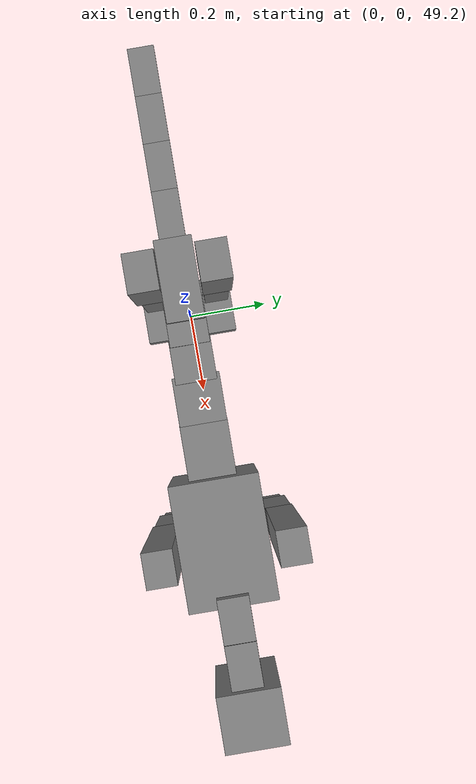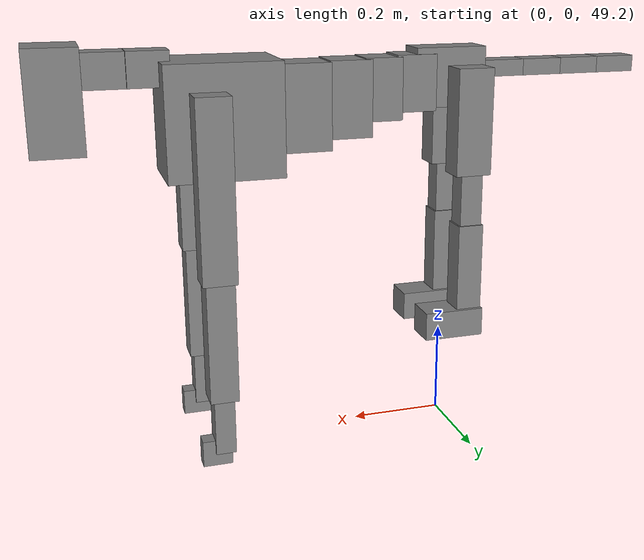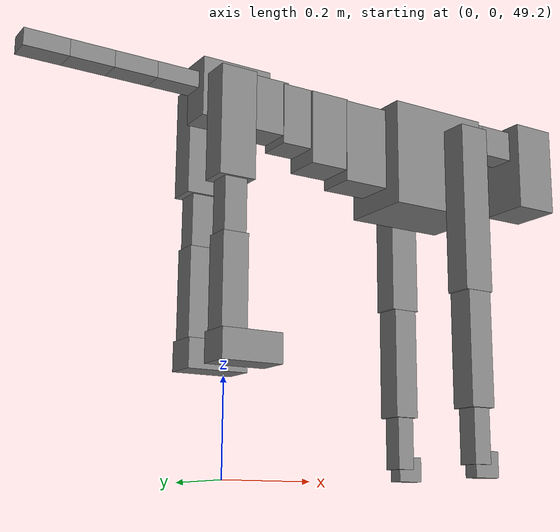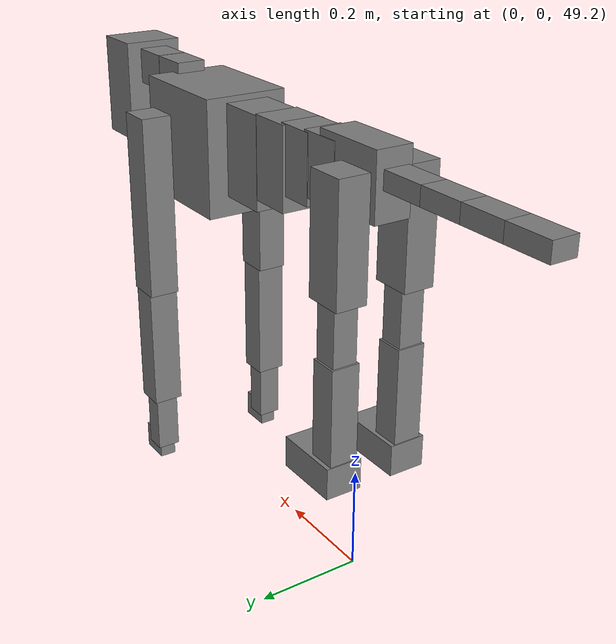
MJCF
<mujoco model="dog">

    <default>
        <joint armature="0.02" stiffness="1" damping="0.2" limited="true"/>
        <geom condim="3" friction="1 0.05 0.05" margin="0.01"/>
        <motor ctrllimited="true" ctrlrange="-1.0 1.0" forcelimited="true" gear="50"/>
    </default>

    <compiler inertiafromgeom="true" angle="radian"/>

    <option timestep="0.016" iterations="50" tolerance="1e-10" solver="Newton" jacobian="dense" cone="pyramidal"/>

    <size nconmax="20000" njmax="60000" nstack="5000000"/>
    <visual>
        <map force="0.1" zfar="30"/>
        <rgba haze="0.15 0.25 0.35 1"/>
        <quality shadowsize="2048"/>
        <global offwidth="800" offheight="800"/>
    </visual>

    <asset>
        <texture type="skybox" builtin="gradient" rgb1="0.3 0.5 0.7" rgb2="0 0 0" width="512" height="512"/>
        <texture name="texplane" type="2d" builtin="checker" rgb1=".2 .3 .4" rgb2=".1 0.15 0.2" width="512" height="512"
                 mark="cross" markrgb=".8 .8 .8"/>
        <texture name="texgeom" type="cube" builtin="flat" mark="cross" width="127" height="1278" rgb1="0.8 0.6 0.4"
                 rgb2="0.8 0.6 0.4" markrgb="1 1 1" random="0.01"/>

        <material name="matplane" reflectance="0.3" texture="texplane" texrepeat="1 1" texuniform="true"/>
        <material name="matgeom" texture="texgeom" texuniform="true" rgba="0.8 0.6 .4 1"/>
    </asset>

    <worldbody>
        <geom name="floor" pos="0 0 0" size="0 0 .25" type="plane" material="matplane" condim="3"/>

        <light directional="false" diffuse=".2 .2 .2" specular="0 0 0" pos="0 0 5" dir="0 0 -1" castshadow="false"/>
        <light mode="targetbodycom" target="torso" directional="false" diffuse=".8 .8 .8" specular="0.3 0.3 0.3"
               pos="0 0 4.0" dir="0 0 -1"/>

        <body name="root" pos="0 0 50">
            <freejoint name="root_1"/>
            <geom type="box" pos="0 0 -0.02" size="0.0774  0.0358  0.063" density="2030"/>

            <body name="spine1" pos="0.054 0 0">
                <joint name="spine1_y" axis="0 1 0" range="0 0.7" limited="true"/>
                <geom type="box" pos="0.02375 0 -0.03" size="0.04375  0.0375  0.05985" density="2030"/>

                <body name="spine2" pos="0.0612 0 0">
                    <joint name="spine2_y" axis="0 1 0" range="-0.15 0.15" limited="true"/>
                    <geom type="box" pos="0.03555  0  -0.04" size="0.04055  0.039  0.06615" density="2030"/>

                    <body name="spine3" pos="0.0730 0 0">
                        <joint name="spine3_y" axis="0 1 0" range="-0.15 0.15" limited="true"/>
                        <geom type="box" pos="0.03555  0  -0.057" size="0.04555  0.0445  0.081" density="2030"/>

                        <body name="spine4" pos="0.0780 0 0">
                            <joint name="spine4_y" axis="0 1 0" range="-0.15 0.15" limited="true"/>
                            <geom type="box" pos="0.05265  0  -0.07" size="0.05265  0.045  0.09135" density="2030"/>

                            <body name="torso" pos="0.1082 0 0">
                                <joint name="torso_y" axis="0 1 0" range="-0.15 0.15" limited="true"/>
                                <geom type="box" pos="0.11925  0  -0.085" size="0.11925  0.085  0.11745"
                                      density="2030"/>

                                <body name="neck1" pos="0.2160  0   0.0180">
                                    <joint name="neck1_y" axis="0 1 0" range="-1.2  -1" limited="true"/>
                                    <geom type="box" pos="0.0423  0  0" size="0.0423  0.03  0.036" density="2325"/>

                                    <body name="neck2" pos="0.0853  0  0">
                                        <joint name="neck2_y" axis="0 1 0" range="0.1  0" limited="true"/>
                                        <geom type="box" pos="0.0423  0  0" size="0.0423  0.03  0.036" density="2325"/>

                                        <body name="head" pos="0.0853  0  0">
                                            <joint name="head_y" axis="0 1 0" range="-0.3  -0.2" limited="true"/>
                                            <geom type="box" pos="0.0531  0  -0.055" size="0.0531  0.06  0.1044"
                                                  density="4030"/>

                                        </body>
                                    </body>
                                </body>

                                <body name="front_shoulder" pos="0.156  0   -0.0480">
                                    <joint name="front_shoulder_y" axis="0 1 0" range="-1 1.5" limited="true"/>
                                    <geom type="box" pos="0 0.13 -0.1597" size="0.0357  0.0305  0.1863" density="1158"/>
                                    <geom type="box" pos="0 -0.13 -0.1597" size="0.0357  0.0305  0.1863"
                                          density="1158"/>

                                    <body name="front_elbow" pos="0  0  -0.3193">
                                        <joint name="front_elbow_y" axis="0 1 0" range="-2 0" limited="true"/>
                                        <geom type="box" pos="0 0.13 -0.1386" size="0.0296  0.0302  0.1386"
                                              density="1081"/>
                                        <geom type="box" pos="0 -0.13 -0.1386" size="0.0296  0.0302  0.1386"
                                              density="1081"/>

                                        <body name="front_wrist" pos="0  0  -0.2773">
                                            <joint name="front_wrist_y" axis="0 1 0" range="-0.2 0" limited="true"/>
                                            <geom type="box" pos="0 0.13 -0.0521" size="0.0211  0.0234  0.0653"
                                                  density="1664"/>
                                            <geom type="box" pos="0 -0.13 -0.0521" size="0.0211  0.0234  0.0653"
                                                  density="1664"/>

                                            <body name="front_finger_end" pos="0  0  -0.1043">
                                                <joint name="front_finger_y" axis="0 1 0" range="-0.4 1"
                                                       limited="true"/>
                                                <geom type="box" pos="0.0167  0.13  -0.0127"
                                                      size="0.0307  0.0167  0.0277" density="1515"/>
                                                <geom type="box" pos="0.0167  -0.13  -0.0127"
                                                      size="0.0307  0.0167  0.0277" density="1515"/>

                                            </body>

                                        </body>
                                    </body>
                                </body>

                            </body>
                        </body>
                    </body>
                </body>
            </body>

            <body name="back_hip" pos="-0.03 0 -0.018">
                <joint name="back_hip_y" axis="0 1 0" range="-1.5 0.3" limited="true"/>
                <geom type="box" pos="0 0.07 -0.0909" size="0.0391  0.0307  0.1137" density="1154"/>
                <geom type="box" pos="0 -0.07 -0.0909" size="0.0391  0.0307  0.1137" density="1154"/>

                <body name="back_knee" pos="0  0  -0.1818">
                    <joint name="back_knee_y" axis="0 1 0" range="0 2.8" limited="true"/>
                    <geom type="box" pos="0 0.07 -0.0725" size="0.0242  0.0239  0.0880" density="1227"/>
                    <geom type="box" pos="0 -0.07 -0.0725" size="0.0242  0.0239  0.0880" density="1227"/>

                    <body name="back_ankle" pos="0  0  -0.1450">
                        <joint name="back_ankle_y" axis="0 1 0" range="-2.2 0" limited="true"/>
                        <geom type="box" pos="0 0.07 -0.0965" size="0.0278  0.0278  0.1078" density="1284"/>
                        <geom type="box" pos="0 -0.07 -0.0965" size="0.0278  0.0278  0.1078" density="1284"/>

                        <body name="back_toe_end" pos="0  0  -0.1930">
                            <joint name="back_toe_y" axis="0 1 0" range="-0.4 1" limited="true"/>
                            <geom type="box" pos="0.0360  0.07  -0.0158" size="0.0660  0.0360  0.0308" density="1515"/>
                            <geom type="box" pos="0.0360  -0.07  -0.0158" size="0.0660  0.0360  0.0308" density="1515"/>

                        </body>
                    </body>
                </body>
            </body>

            <body name="tail1" pos="-0.074 0 -0.006">
                <joint name="tail1_y" axis="0 1 0" range="-0.2 0.2" limited="true"/>
                <geom type="box" pos="-0.0536  0  0" size="0.045  0.025  0.0175" density="1587"/>

                <body name="tail2" pos="-0.09 0 0">
                    <joint name="tail2_y" axis="0 1 0" range="-0.2 0.2" limited="true"/>
                    <geom type="box" pos="-0.0536  0  0" size="0.045  0.025  0.0175" density="1587"/>

                    <body name="tail3" pos="-0.09 0 0">
                        <joint name="tail3_y" axis="0 1 0" range="-0.2 0.2" limited="true"/>
                        <geom type="box" pos="-0.0536  0  0" size="0.045  0.025  0.0175" density="1587"/>

                        <body name="tail4" pos="-0.09 0 0">
                            <joint name="tail4_y" axis="0 1 0" range="-0.2 0.2" limited="true"/>
                            <geom type="box" pos="-0.0536  0  0" size="0.045  0.025  0.0175" density="1587"/>

                        </body>
                    </body>
                </body>
            </body>
        </body>
    </worldbody>

    <actuator>
        <motor joint="spine1_y" forcerange="-150 150     "/>
        <motor joint="spine2_y" forcerange="-150 150     "/>
        <motor joint="spine3_y" forcerange="-150 150     "/>
        <motor joint="spine4_y" forcerange="-150 150     "/>
        <motor joint="torso_y" forcerange="-150 150     "/>
        <motor joint="neck1_y" forcerange="-100 100       "/>
        <motor joint="neck2_y" forcerange="-100 100       "/>
        <motor joint="head_y" forcerange="-150 150       "/>
        <motor joint="front_shoulder_y" forcerange="-181.35 121.81"/>
        <motor joint="front_elbow_y" forcerange="-186.87 132.99"/>
        <motor joint="front_wrist_y" forcerange="-95.61 91.54"/>
        <motor joint="front_finger_y" forcerange="-20.88 28.37"/>
        <motor joint="back_hip_y" forcerange="-369.72 239.29"/>
        <motor joint="back_knee_y" forcerange="-260.18 287.00"/>
        <motor joint="back_angle_y" forcerange="-159.52 184.75"/>
        <motor joint="back_toe_y" forcerange="-68.45 139.55"/>
        <motor joint="tail1_y" forcerange="-50 50     "/>
        <motor joint="tail2_y" forcerange="-50 50     "/>
        <motor joint="tail3_y" forcerange="-50 50     "/>
        <motor joint="tail4_y" forcerange="-50 50     "/>
    </actuator>
</mujoco>
